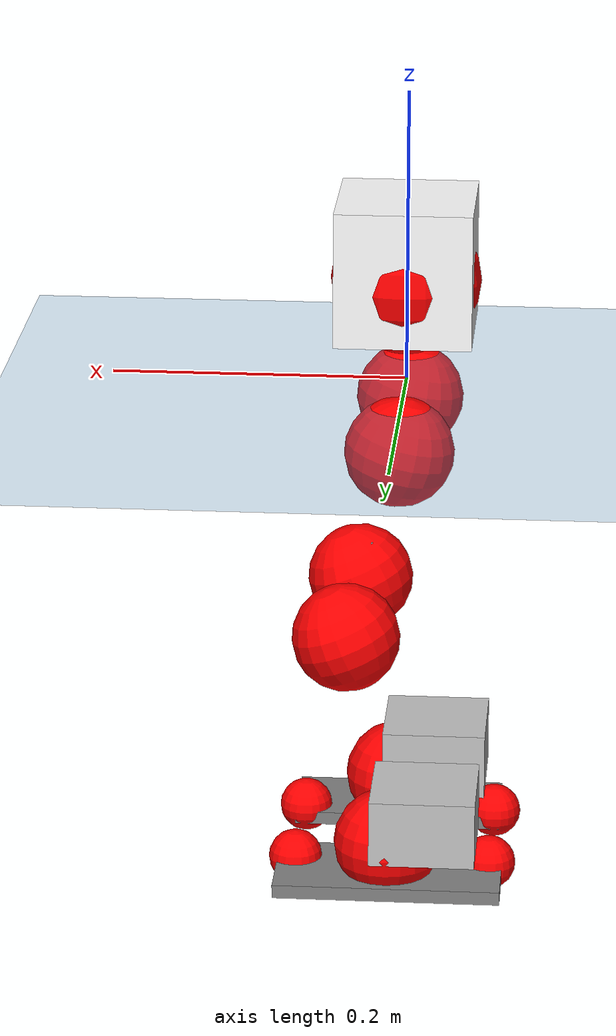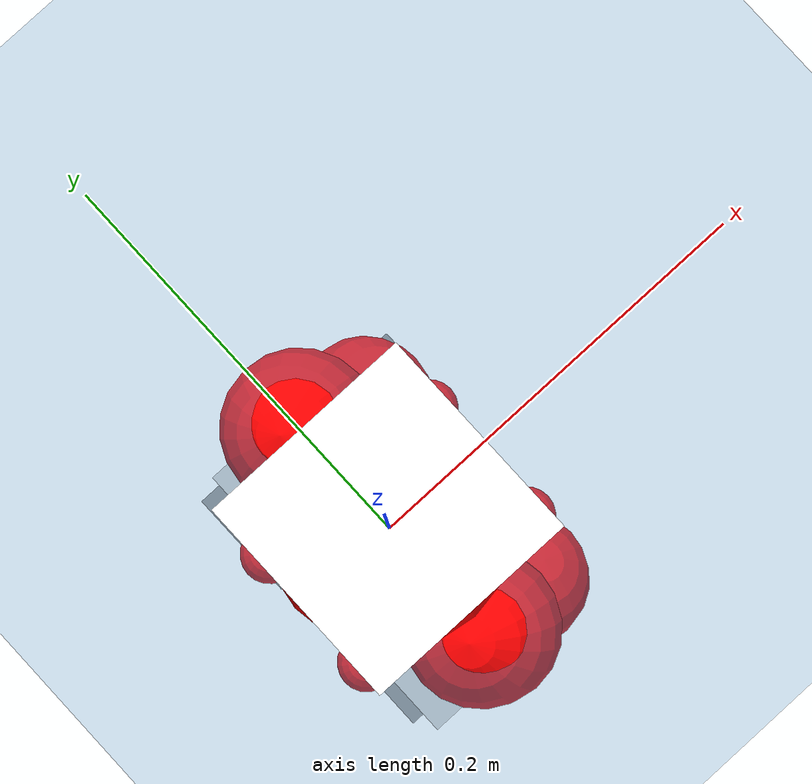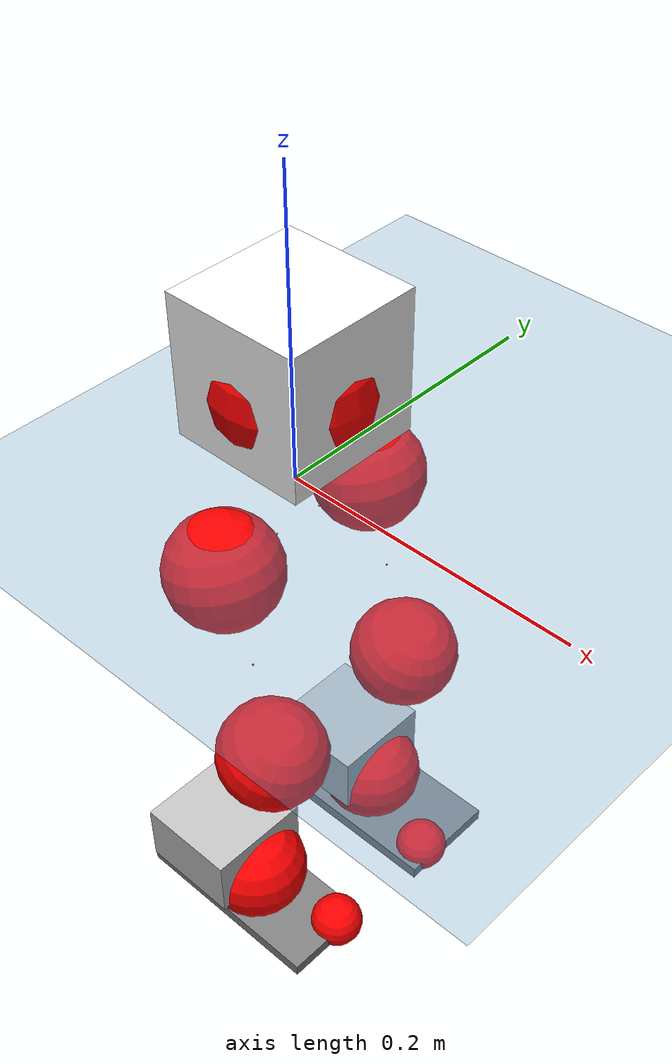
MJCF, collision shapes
<mujoco model="pi_12dof_release_v1">
  <compiler angle="radian" assetdir="assets" balanceinertia="true" inertiafromgeom="false"/>

  <option timestep="0.005" density="1.2" viscosity="2e-05"/>

  <size nkey="1"/>

  <visual>
    <quality shadowsize="8192"/>
    <map shadowclip="0.5"/>
  </visual>

  <default>
    <default class="/">
      <joint armature="0.01" damping="0.01" frictionloss="0.01"/>
      <geom contype="0" conaffinity="0" group="1" solref="-1000 -80"/>
      <site size="0.01 0.005 0.005" group="5"/>
      <general forcelimited="true" biastype="affine" gainprm="20" biasprm="0 -20 -0.5"/>
      <default class="foot">
        <geom size="0.0845 0.036 0.005" type="box" condim="6" group="4" priority="1" friction="0.9 0.2 0.2" solimp="0.015 1 0.005"/>
      </default>
      <default class="reward_collision_sphere">
        <geom group="5" rgba="1 0 0 1"/>
      </default>
    </default>
  </default>

  <asset>
    <texture type="skybox" colorspace="auto" name="//unnamed_texture_0" builtin="gradient" rgb1="0.95 0.95 0.95" rgb2="0.95 0.95 0.95" width="100" height="600"/>
    <texture type="2d" colorspace="auto" name="texplane" builtin="checker" rgb1="0.345 0.575 0.748" rgb2="0.345 0.575 0.748" markrgb="1 1 1" width="512" height="512"/>
    <material name="MatPlane" class="/" texture="texplane" texuniform="true" texrepeat="2 2" specular="0.9"/>
    <mesh name="baselink_1" class="/" file="baselink_1.STL"/>
    <mesh name="r_hip_pitch_link" class="/" file="r_hip_pitch_link.STL"/>
    <mesh name="r_hip_roll_link" class="/" file="r_hip_roll_link.STL"/>
    <mesh name="r_thigh_link" class="/" file="r_thigh_link.STL"/>
    <mesh name="r_calf_link" class="/" file="r_calf_link.STL"/>
    <mesh name="r_ankle_pitch_link" class="/" file="r_ankle_pitch_link.STL"/>
    <mesh name="r_ankle_roll_link" class="/" file="r_ankle_roll_link.STL"/>
    <mesh name="l_hip_pitch_link" class="/" file="l_hip_pitch_link.STL"/>
    <mesh name="l_hip_roll_link" class="/" file="l_hip_roll_link.STL"/>
    <mesh name="l_thigh_link" class="/" file="l_thigh_link.STL"/>
    <mesh name="l_calf_link" class="/" file="l_calf_link.STL"/>
    <mesh name="l_ankle_pitch_link" class="/" file="l_ankle_pitch_link.STL"/>
    <mesh name="l_ankle_roll_link" class="/" file="l_ankle_roll_link.STL"/>
  </asset>

  <worldbody>
    <geom name="floor" class="/" size="100 100 0.125" type="plane" group="0" material="MatPlane"/>
    <light name="toplight_shadow" class="/" pos="0 0 5" dir="0.0990148 0.0990148 -0.990148" type="directional" ambient="0.04 0.04 0.04" diffuse="0.55 0.55 0.55" specular="0.12 0.12 0.12"/>
    <light name="toplight_fill" class="/" pos="0 0 5" dir="0.0990148 0.0990148 -0.990148" type="directional" castshadow="false" ambient="0.04 0.04 0.04" diffuse="0.3 0.3 0.3" specular="0.08 0.08 0.08"/>
    <body name="trunk" pos="0.000774519 0.000249074 0.000763703" quat="1 0.00013187 0.000406473 -0.000130955">
      <inertial pos="0.0030952 -0.00119583 0.0400524" quat="0.695083 0.00761441 0.00952021 0.718826" mass="1.71809" diaginertia="0.00962755 0.00264822 0.00422673"/>
      <joint name="//unnamed_joint_0" type="free"/>
      <geom name="//unnamed_geom_1" class="/" type="mesh" density="0" rgba="1 1 1 1" mesh="baselink_1"/>
      <geom name="//unnamed_geom_2" class="/" size="0.0462701 0.0462701 0.0462701" pos="0 0 0.0799603" type="box" rgba="1 1 1 1"/>
      <geom name="//unnamed_geom_3" class="reward_collision_sphere" size="0.0508971" pos="0 0 0.0699652"/>
      <site name="imu" class="/" pos="-0.00430398 -0.00483692 0.000649151" size="0.00925402"/>
      <camera name="track" class="/" pos="0 -1.56575 0" quat="0.707107 0.707107 0 0" mode="trackcom"/>
      <camera name="ego_camera" class="/" pos="0.0745372 0 0.179911" quat="-0.5 -0.5 0.5 0.5"/>
      <body name="r_hip_pitch_link" pos="-0.000111358 -0.0175626 -0.0327104" quat="0.992214 1.21353e-05 -0.124541 -0.000295106">
        <inertial pos="0.00191433 -0.0437611 -0.000199978" quat="-0.0184294 0.708136 -0.0263232 0.705344" mass="0.294438" diaginertia="0.000105648 2.89011e-05 8.2373e-05"/>
        <joint name="r_hip_pitch_joint" class="/" pos="0 0 0" axis="2.66748e-05 -0.999999 0.00121246" range="-1.74765 1.24674" armature="0.00963251" damping="0.0165268" frictionloss="0.00939445"/>
        <geom name="//unnamed_geom_4" class="/" type="mesh" density="0" rgba="0.75294 0.75294 0.75294 1" mesh="r_hip_pitch_link"/>
        <geom name="//unnamed_geom_5" class="/" size="0.000462701 0.000462701 0.000462701" type="box" rgba="0.75294 0.75294 0.75294 1"/>
        <body name="r_hip_roll_link" pos="0.00015916 -0.043316 -1.57135e-05" quat="1 -5.64746e-05 0.000108719 6.92201e-05">
          <inertial pos="-0.00132719 -0.000547765 -0.062552" quat="0.705827 -0.0801536 -0.0817248 0.699074" mass="0.305164" diaginertia="0.00032456 8.23735e-05 0.000128435"/>
          <joint name="r_hip_roll_joint" class="/" pos="0 0 0" axis="-0.999993 -0.00365037 -8.75394e-05" range="-0.119714 0.500076" armature="0.00923249" damping="0.00524371" frictionloss="0.00922329"/>
          <geom name="//unnamed_geom_6" class="/" type="mesh" density="0" rgba="0.75294 0.75294 0.75294 1" mesh="r_hip_roll_link"/>
          <geom name="//unnamed_geom_7" class="/" size="0.000462701 0.000462701 0.000462701" type="box" rgba="0.75294 0.75294 0.75294 1"/>
          <geom name="//unnamed_geom_8" class="reward_collision_sphere" size="0.0370161"/>
          <body name="r_thigh_link" pos="0.00087824 0.00152248 -0.0696941" quat="1 -9.90285e-07 -1.79196e-06 3.09973e-06">
            <inertial pos="-5.27891e-06 0.00169029 -0.0484866" quat="0.73727 0.675598 9.30713e-05 -0.00010102" mass="0.0897414" diaginertia="0.00012014 2.77251e-05 5.78997e-05"/>
            <joint name="r_thigh_joint" class="/" pos="0 0 0" axis="0.00276277 -0.000317231 -0.999996" range="-0.296745 0.591067" armature="0.00947253" damping="0.00534494" frictionloss="0.00879339"/>
            <geom name="//unnamed_geom_9" class="/" type="mesh" density="0" rgba="0.75294 0.75294 0.75294 1" mesh="r_thigh_link"/>
            <geom name="//unnamed_geom_10" class="/" size="0.000462701 0.000462701 0.000462701" type="box" rgba="0.75294 0.75294 0.75294 1"/>
            <body name="r_calf_link" pos="-0.00146228 -0.00272497 -0.0698642" quat="0.947649 -1.08657e-05 0.319313 3.23918e-06">
              <inertial pos="-0.000457836 0.000273582 -0.0697024" quat="0.999981 -0.00251308 0.00106333 0.00549408" mass="0.649243" diaginertia="0.00346757 0.00102953 0.000176096"/>
              <joint name="r_calf_joint" class="/" pos="0 0 0" axis="0.00217336 -0.999998 6.70537e-05" range="-1.64733 0.648944" armature="0.00953869" damping="0.00871532" frictionloss="0.00921231"/>
              <geom name="//unnamed_geom_11" class="/" type="mesh" density="0" rgba="0.75294 0.75294 0.75294 1" mesh="r_calf_link"/>
              <geom name="//unnamed_geom_12" class="/" size="0.000462701 0.000462701 0.000462701" type="box" rgba="0.75294 0.75294 0.75294 1"/>
              <geom name="//unnamed_geom_13" class="reward_collision_sphere" size="0.0370161"/>
              <body name="r_ankle_pitch_link" pos="9.95142e-05 -4.01808e-05 -0.139527" quat="0.980062 6.36236e-05 -0.198691 7.19347e-06">
                <inertial pos="0.00469063 0.00278394 -0.00081447" quat="0.00675696 0.708781 -0.00355352 0.705387" mass="0.140393" diaginertia="0.000302812 6.55461e-05 0.000120059"/>
                <joint name="r_ankle_pitch_joint" class="/" pos="0 0 0" axis="0.000329359 -0.999998 -0.00209618" stiffness="0.000468483" range="-1.3006 0.516646" armature="0.00928342" damping="0.00744996" frictionloss="0.00919921"/>
                <geom name="//unnamed_geom_14" class="/" type="mesh" density="0" rgba="0.75294 0.75294 0.75294 1" mesh="r_ankle_pitch_link"/>
                <geom name="//unnamed_geom_15" class="/" size="0.0360907 0.0370161 0.0231351" type="box" rgba="0.75294 0.75294 0.75294 1"/>
                <body name="r_ankle_roll_link" pos="0.076251 0.00295969 0.000252012" quat="1 5.73263e-06 -3.29292e-05 -5.05616e-06">
                  <inertial pos="-0.0236694 -0.000183316 -0.0135489" quat="0.557875 0.429901 0.437766 0.558857" mass="0.408428" diaginertia="0.0010768 0.000302535 0.000278283"/>
                  <joint name="r_ankle_roll_joint" class="/" pos="0 0 0" axis="-0.999998 0.000700617 -0.00186988" range="-0.169501 0.153972" armature="0.00904232" damping="0.00352097" frictionloss="0.00965112"/>
                  <geom name="//unnamed_geom_16" class="/" type="mesh" density="0" rgba="0.75294 0.75294 0.75294 1" mesh="r_ankle_roll_link"/>
                  <geom name="//unnamed_geom_17" class="/" type="mesh" rgba="0.75294 0.75294 0.75294 1" mesh="r_ankle_roll_link"/>
                  <geom name="right_foot" class="foot" size="0.0727455 0.0315627 0.0044988" pos="-0.0506853 0 -0.0439782"/>
                  <geom name="//unnamed_geom_19" class="reward_collision_sphere" size="0.0370161" pos="-0.0496914 0 -0.0199901"/>
                  <geom name="//unnamed_geom_20" class="reward_collision_sphere" size="0.018508" pos="0.0149074 0.0156575 -0.0399801"/>
                  <geom name="//unnamed_geom_21" class="reward_collision_sphere" size="0.018508" pos="-0.119259 0.0156575 -0.0399801"/>
                  <site name="right_foot" class="foot" pos="-0.0506853 0 -0.0439782" size="0.00925402"/>
                </body>
              </body>
            </body>
          </body>
        </body>
      </body>
      <body name="l_hip_pitch_link" pos="-0.000127519 0.0186462 -0.032848" quat="0.992207 -3.77137e-05 -0.124603 0.000130259">
        <inertial pos="0.000732483 0.0421395 -0.000225712" quat="-0.0384377 0.706201 0.0293309 0.706359" mass="0.309197" diaginertia="0.000124097 3.1214e-05 0.000100055"/>
        <joint name="l_hip_pitch_joint" class="/" pos="0 0 0" axis="0.00398713 0.999992 -0.00076448" range="-1.26059 1.74658" armature="0.00895308" damping="0.0125309" frictionloss="0.00911023"/>
        <geom name="//unnamed_geom_22" class="/" type="mesh" density="0" rgba="0.75294 0.75294 0.75294 1" mesh="l_hip_pitch_link"/>
        <geom name="//unnamed_geom_23" class="/" size="0.000462701 0.000462701 0.000462701" type="box" rgba="0.75294 0.75294 0.75294 1"/>
        <body name="l_hip_roll_link" pos="0.000589588 0.0434077 0.000575871" quat="1 7.38964e-05 2.9104e-05 -2.05345e-05">
          <inertial pos="-0.000945743 0.000482884 -0.0622926" quat="0.699297 -0.0754567 -0.0781323 0.706531" mass="0.304514" diaginertia="0.000319738 8.11844e-05 0.00012722"/>
          <joint name="l_hip_roll_joint" class="/" pos="0 0 0" axis="-0.999999 0.000541957 0.00121639" range="-0.509954 0.105141" armature="0.00950624" damping="0" frictionloss="0.00923362"/>
          <geom name="//unnamed_geom_24" class="/" type="mesh" density="0" rgba="0.75294 0.75294 0.75294 1" mesh="l_hip_roll_link"/>
          <geom name="//unnamed_geom_25" class="/" size="0.000462701 0.000462701 0.000462701" type="box" rgba="0.75294 0.75294 0.75294 1"/>
          <geom name="//unnamed_geom_26" class="reward_collision_sphere" size="0.0370161"/>
          <body name="l_thigh_link" pos="0.00105302 -0.00114109 -0.0685838" quat="1 -6.60259e-07 -8.79894e-05 0.000126676">
            <inertial pos="-0.000371816 -0.000569085 -0.0485624" quat="0.676029 0.736872 0.000851234 0.00200755" mass="0.0899452" diaginertia="0.000121139 2.76765e-05 5.77212e-05"/>
            <joint name="l_thigh_joint" class="/" pos="0 0 0" axis="-0.000196057 6.97353e-05 -1" range="-0.598567 0.313678" armature="0.00924592" damping="0.00323271" frictionloss="0.0092064"/>
            <geom name="//unnamed_geom_27" class="/" type="mesh" density="0" rgba="0.75294 0.75294 0.75294 1" mesh="l_thigh_link"/>
            <geom name="//unnamed_geom_28" class="/" size="0.000462701 0.000462701 0.000462701" type="box" rgba="0.75294 0.75294 0.75294 1"/>
            <body name="l_calf_link" pos="-8.88043e-05 -0.000142252 -0.0705269" quat="0.947648 8.3655e-06 0.319316 -4.39065e-05">
              <inertial pos="0.000413583 0.00215159 -0.0695957" quat="0.999984 0.00300299 3.31945e-05 0.00484207" mass="0.634657" diaginertia="0.00336493 0.00101345 0.000172342"/>
              <joint name="l_calf_joint" class="/" pos="0 0 0" axis="-0.000444219 1 -0.00013699" range="-0.633387 1.656" armature="0.00927116" damping="0.00695766" frictionloss="0.00925402"/>
              <geom name="//unnamed_geom_29" class="/" type="mesh" density="0" rgba="0.75294 0.75294 0.75294 1" mesh="l_calf_link"/>
              <geom name="//unnamed_geom_30" class="/" size="0.000462701 0.000462701 0.000462701" type="box" rgba="0.75294 0.75294 0.75294 1"/>
              <geom name="//unnamed_geom_31" class="reward_collision_sphere" size="0.0370161"/>
              <body name="l_ankle_pitch_link" pos="0.00024305 0.00098297 -0.13993" quat="0.980067 3.17606e-06 -0.198669 5.71974e-06">
                <inertial pos="0.0058071 -0.00160646 -0.000126493" quat="-0.00198359 0.707403 0.00251995 0.706803" mass="0.140761" diaginertia="0.00029741 6.56435e-05 0.000119416"/>
                <joint name="l_ankle_pitch_joint" class="/" pos="0 0 0" axis="-0.00059095 1 -0.000253748" range="-0.510651 1.29606" armature="0.00947306" damping="0.00252622" frictionloss="0.00948023"/>
                <geom name="//unnamed_geom_32" class="/" type="mesh" density="0" rgba="0.75294 0.75294 0.75294 1" mesh="l_ankle_pitch_link"/>
                <geom name="//unnamed_geom_33" class="/" size="0.0360907 0.0370161 0.0231351" type="box" rgba="0.75294 0.75294 0.75294 1"/>
                <body name="l_ankle_roll_link" pos="0.0749637 0.00055249 -0.000468624" quat="1 -7.91683e-05 2.98039e-05 0.000121116">
                  <inertial pos="-0.02409 -0.000582914 -0.0143845" quat="0.560835 0.42946 0.434443 0.558827" mass="0.418888" diaginertia="0.00110211 0.000307407 0.000284501"/>
                  <joint name="l_ankle_roll_joint" class="/" pos="0 0 0" axis="-0.999999 0.00039279 -0.00147674" range="-0.149699 0.153185" armature="0.00893103" damping="0.00902544" frictionloss="0.00924005"/>
                  <geom name="//unnamed_geom_34" class="/" type="mesh" density="0" rgba="0.75294 0.75294 0.75294 1" mesh="l_ankle_roll_link"/>
                  <geom name="//unnamed_geom_35" class="/" type="mesh" rgba="0.75294 0.75294 0.75294 1" mesh="l_ankle_roll_link"/>
                  <geom name="left_foot" class="foot" size="0.0778254 0.0369943 0.00469117" pos="-0.0506853 0 -0.0439782"/>
                  <geom name="//unnamed_geom_37" class="reward_collision_sphere" size="0.0370161" pos="-0.0496914 0 -0.0199901"/>
                  <geom name="//unnamed_geom_38" class="reward_collision_sphere" size="0.018508" pos="0.0149074 -0.0156575 -0.0399801"/>
                  <geom name="//unnamed_geom_39" class="reward_collision_sphere" size="0.018508" pos="-0.119259 -0.0156575 -0.0399801"/>
                  <site name="left_foot" class="foot" pos="-0.0506853 0 -0.0439782" size="0.00925402"/>
                </body>
              </body>
            </body>
          </body>
        </body>
      </body>
    </body>
  </worldbody>

  <contact>
    <pair class="/" geom1="floor" geom2="right_foot" name="//unnamed_contact_1"/>
    <pair class="/" geom1="floor" geom2="left_foot" name="//unnamed_contact_0"/>
  </contact>

  <actuator>
    <general name="r_hip_pitch_joint" class="/" joint="r_hip_pitch_joint" forcerange="-19.4914 19.4914" gainprm="18.4821" biasprm="0 -18.4821 -0.459816"/>
    <general name="r_hip_roll_joint" class="/" joint="r_hip_roll_joint" forcerange="-19.4659 19.4659" gainprm="18.4821" biasprm="0 -18.4821 -0.459816"/>
    <general name="r_thigh_joint" class="/" joint="r_thigh_joint" forcerange="-18.8565 18.8565" gainprm="18.4821" biasprm="0 -18.4821 -0.459816"/>
    <general name="r_calf_joint" class="/" joint="r_calf_joint" forcerange="-19.3844 19.3844" gainprm="18.4821" biasprm="0 -18.4821 -0.459816"/>
    <general name="r_ankle_pitch_joint" class="/" joint="r_ankle_pitch_joint" forcerange="-19.3111 19.3111" gainprm="18.4821" biasprm="0 -18.4821 -0.459816"/>
    <general name="r_ankle_roll_joint" class="/" joint="r_ankle_roll_joint" forcerange="-18.8141 18.8141" gainprm="18.4821" biasprm="0 -18.4821 -0.459816"/>
    <general name="l_hip_pitch_joint" class="/" joint="l_hip_pitch_joint" forcerange="-19.8373 19.8373" gainprm="18.4821" biasprm="0 -18.4821 -0.459816"/>
    <general name="l_hip_roll_joint" class="/" joint="l_hip_roll_joint" forcerange="-19.2722 19.2722" gainprm="18.4821" biasprm="0 -18.4821 -0.459816"/>
    <general name="l_thigh_joint" class="/" joint="l_thigh_joint" forcerange="-19.298 19.298" gainprm="18.4821" biasprm="0 -18.4821 -0.459816"/>
    <general name="l_calf_joint" class="/" joint="l_calf_joint" forcerange="-19.3121 19.3121" gainprm="18.4821" biasprm="0 -18.4821 -0.459816"/>
    <general name="l_ankle_pitch_joint" class="/" joint="l_ankle_pitch_joint" forcerange="-18.7688 18.7688" gainprm="18.4821" biasprm="0 -18.4821 -0.459816"/>
    <general name="l_ankle_roll_joint" class="/" joint="l_ankle_roll_joint" forcerange="-20.2162 20.2162" gainprm="18.4821" biasprm="0 -18.4821 -0.459816"/>
  </actuator>

  <sensor>
    <gyro site="imu" name="imu_angular_velocity"/>
    <velocimeter site="imu" name="imu_linear_velocity"/>
    <framelinvel objtype="site" objname="left_foot" name="left_foot_global_linear_velocity"/>
    <framelinvel objtype="site" objname="right_foot" name="right_foot_global_linear_velocity"/>
  </sensor>

  <keyframe>
    <key name="home" qpos="0 0 0.291 1 0 0 0 0.4 0 0 -0.8 0.4 0 -0.4 0 0 0.8 -0.4 0"/>
  </keyframe>
</mujoco>
